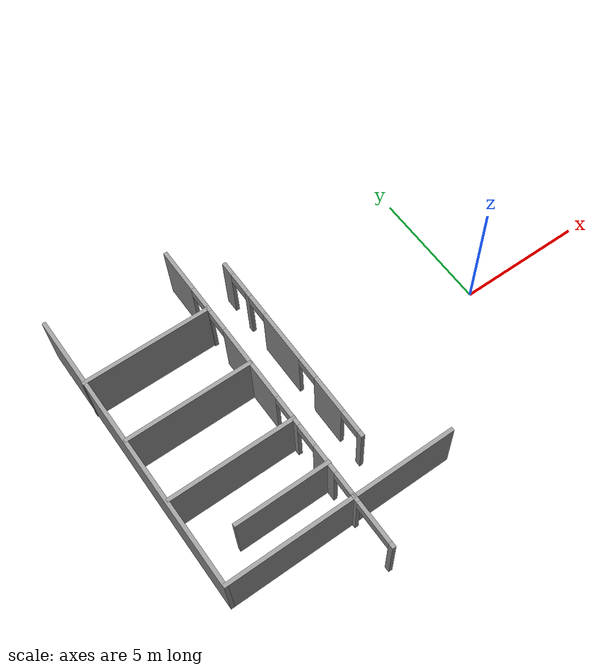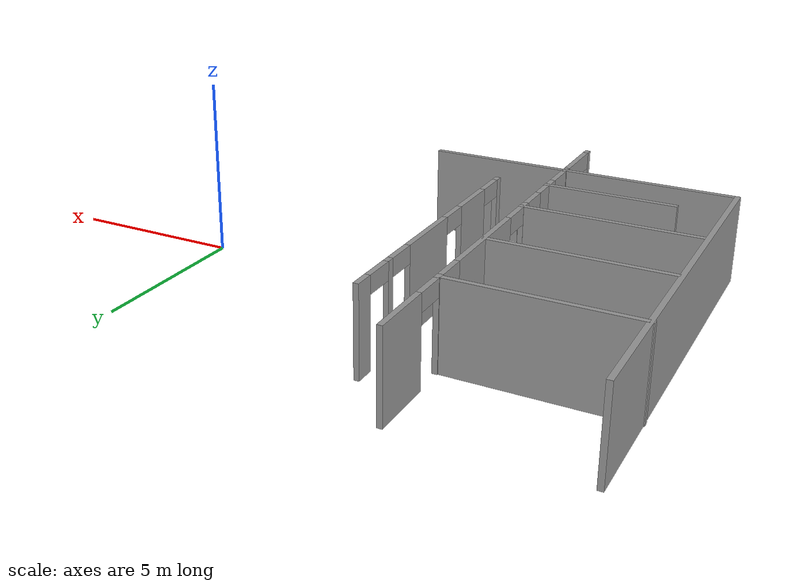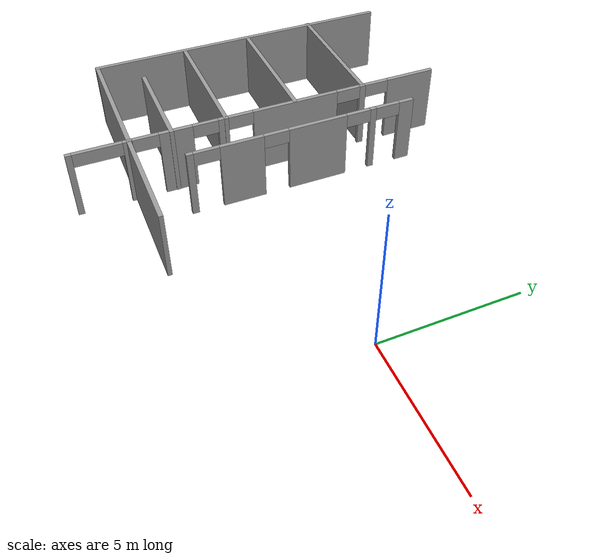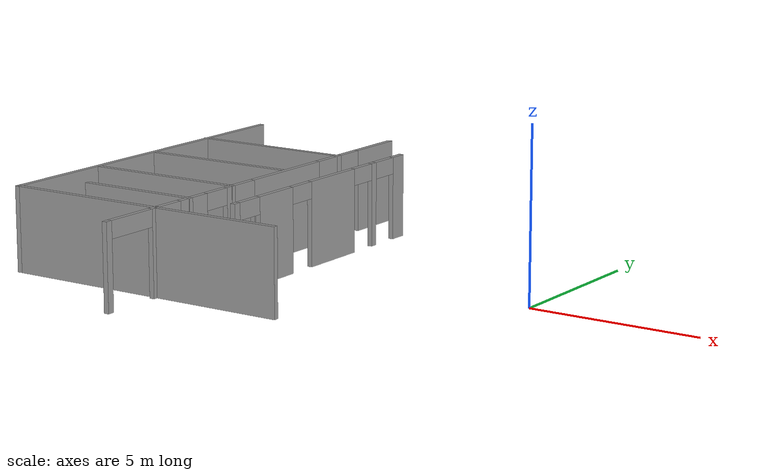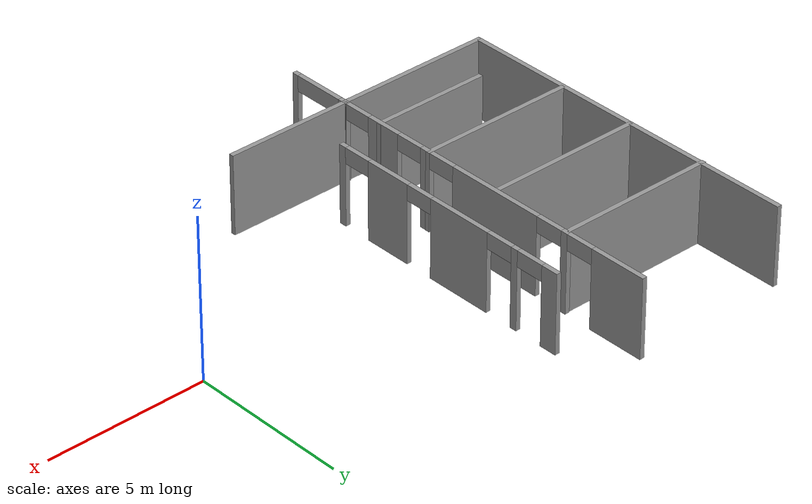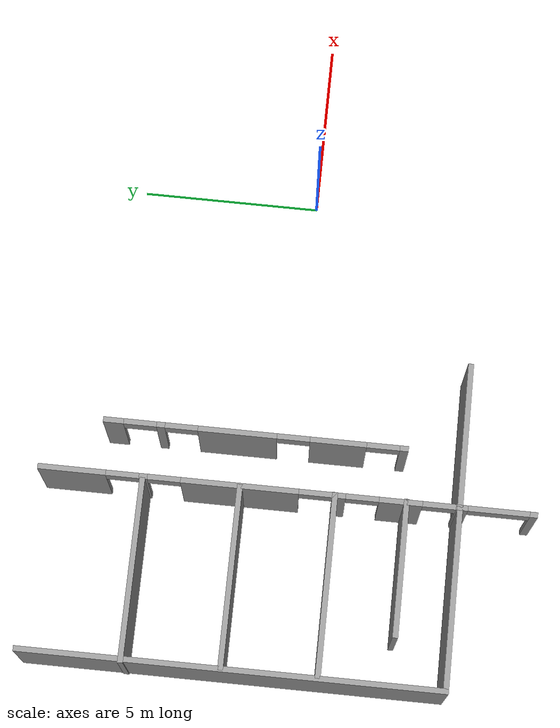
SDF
<sdf version="1.7">
 <model name="batimentH">
  <link name="Wall_1">
   <pose>-13.8701 1.00339 0 0 0 -1.56945</pose>
   <visual name="Wall_1_Visual">
    <pose>0 0 1.25 0 -0 0</pose>
    <geometry><box><size>11.5003 0.15 2.5</size></box></geometry>
    <material>
     <script><uri>file://media/materials/scripts/gazebo.material</uri><name>Gazebo/Grey</name></script>
     <ambient>1 1 1 1</ambient>
     <shader type="pixel"/>
    </material>
    <meta><layer>0</layer></meta>
   </visual>
   <collision name="Wall_1_Collision">
    <pose>0 0 1.25 0 -0 0</pose>
    <geometry><box><size>11.5003 0.15 2.5</size></box></geometry>
    <surface>
     <friction>
      <ode><mu>1</mu><mu2>1</mu2><fdir1>0 0 0</fdir1><slip1>0</slip1><slip2>0</slip2></ode>
      <torsional>
       <coefficient>1</coefficient>
       <patch_radius>0</patch_radius>
       <surface_radius>0</surface_radius>
       <use_patch_radius>1</use_patch_radius>
       <ode><slip>0</slip></ode>
      </torsional>
     </friction>
     <bounce><restitution_coefficient>0</restitution_coefficient><threshold>1e+06</threshold></bounce>
     <contact>
      <collide_without_contact>0</collide_without_contact>
      <collide_without_contact_bitmask>1</collide_without_contact_bitmask>
      <collide_bitmask>1</collide_bitmask>
      <ode>
       <soft_cfm>0</soft_cfm>
       <soft_erp>0.2</soft_erp>
       <kp>1e+13</kp>
       <kd>1</kd>
       <max_vel>0.01</max_vel>
       <min_depth>0</min_depth>
      </ode>
      <bullet>
       <split_impulse>1</split_impulse>
       <split_impulse_penetration_threshold>-0.01</split_impulse_penetration_threshold>
       <soft_cfm>0</soft_cfm>
       <soft_erp>0.2</soft_erp>
       <kp>1e+13</kp>
       <kd>1</kd>
      </bullet>
     </contact>
    </surface>
   </collision>
  </link>
  <link name="Wall_10">
   <pose>-11.4774 3.90885 0 0 -0 0</pose>
   <visual name="Wall_10_Visual">
    <pose>0 0 1.25 0 -0 0</pose>
    <geometry><box><size>5 0.15 2.5</size></box></geometry>
    <material>
     <script><uri>file://media/materials/scripts/gazebo.material</uri><name>Gazebo/Grey</name></script>
     <ambient>1 1 1 1</ambient>
     <shader type="pixel"/>
    </material>
    <meta><layer>0</layer></meta>
   </visual>
   <collision name="Wall_10_Collision">
    <pose>0 0 1.25 0 -0 0</pose>
    <geometry><box><size>5 0.15 2.5</size></box></geometry>
    <surface>
     <friction>
      <ode><mu>1</mu><mu2>1</mu2><fdir1>0 0 0</fdir1><slip1>0</slip1><slip2>0</slip2></ode>
      <torsional>
       <coefficient>1</coefficient>
       <patch_radius>0</patch_radius>
       <surface_radius>0</surface_radius>
       <use_patch_radius>1</use_patch_radius>
       <ode><slip>0</slip></ode>
      </torsional>
     </friction>
     <bounce><restitution_coefficient>0</restitution_coefficient><threshold>1e+06</threshold></bounce>
     <contact>
      <collide_without_contact>0</collide_without_contact>
      <collide_without_contact_bitmask>1</collide_without_contact_bitmask>
      <collide_bitmask>1</collide_bitmask>
      <ode>
       <soft_cfm>0</soft_cfm>
       <soft_erp>0.2</soft_erp>
       <kp>1e+13</kp>
       <kd>1</kd>
       <max_vel>0.01</max_vel>
       <min_depth>0</min_depth>
      </ode>
      <bullet>
       <split_impulse>1</split_impulse>
       <split_impulse_penetration_threshold>-0.01</split_impulse_penetration_threshold>
       <soft_cfm>0</soft_cfm>
       <soft_erp>0.2</soft_erp>
       <kp>1e+13</kp>
       <kd>1</kd>
      </bullet>
     </contact>
    </surface>
   </collision>
  </link>
  <link name="Wall_14">
   <pose>-7.47746 0.99768 0 0 0 -1.5708</pose>
   <visual name="Wall_14_Visual_0">
    <pose>-3.88396 0 1.25 0 -0 0</pose>
    <geometry><box><size>0.55862 0.15 2.5</size></box></geometry>
    <material>
     <script><uri>file://media/materials/scripts/gazebo.material</uri><name>Gazebo/Grey</name></script>
     <ambient>1 1 1 1</ambient>
     <shader type="pixel"/>
    </material>
    <meta><layer>0</layer></meta>
   </visual>
   <visual name="Wall_14_Visual_1">
    <pose>-2.59002 0 1.25 0 -0 0</pose>
    <geometry><box><size>0.22926 0.15 2.5</size></box></geometry>
    <material>
     <script><uri>file://media/materials/scripts/gazebo.material</uri><name>Gazebo/Grey</name></script>
     <ambient>1 1 1 1</ambient>
     <shader type="pixel"/>
    </material>
    <meta><layer>0</layer></meta>
   </visual>
   <visual name="Wall_14_Visual_2">
    <pose>-0.49809 0 1.25 0 -0 0</pose>
    <geometry><box><size>2.15459 0.15 2.5</size></box></geometry>
    <material>
     <script><uri>file://media/materials/scripts/gazebo.material</uri><name>Gazebo/Grey</name></script>
     <ambient>1 1 1 1</ambient>
     <shader type="pixel"/>
    </material>
    <meta><layer>0</layer></meta>
   </visual>
   <visual name="Wall_14_Visual_3">
    <pose>2.25155 0 1.25 0 -0 0</pose>
    <geometry><box><size>1.54468 0.15 2.5</size></box></geometry>
    <material>
     <script><uri>file://media/materials/scripts/gazebo.material</uri><name>Gazebo/Grey</name></script>
     <ambient>1 1 1 1</ambient>
     <shader type="pixel"/>
    </material>
    <meta><layer>0</layer></meta>
   </visual>
   <visual name="Wall_14_Visual_4">
    <pose>4.04358 0 1.25 0 -0 0</pose>
    <geometry><box><size>0.239381 0.15 2.5</size></box></geometry>
    <material>
     <script><uri>file://media/materials/scripts/gazebo.material</uri><name>Gazebo/Grey</name></script>
     <ambient>1 1 1 1</ambient>
     <shader type="pixel"/>
    </material>
    <meta><layer>0</layer></meta>
   </visual>
   <visual name="Wall_14_Visual_5">
    <pose>-3.15465 0 2.25 0 -0 0</pose>
    <geometry><box><size>0.9 0.15 0.5</size></box></geometry>
    <material>
     <script><uri>file://media/materials/scripts/gazebo.material</uri><name>Gazebo/Grey</name></script>
     <ambient>1 1 1 1</ambient>
     <shader type="pixel"/>
    </material>
    <meta><layer>0</layer></meta>
   </visual>
   <visual name="Wall_14_Visual_6">
    <pose>-2.02539 0 2.25 0 -0 0</pose>
    <geometry><box><size>0.9 0.15 0.5</size></box></geometry>
    <material>
     <script><uri>file://media/materials/scripts/gazebo.material</uri><name>Gazebo/Grey</name></script>
     <ambient>1 1 1 1</ambient>
     <shader type="pixel"/>
    </material>
    <meta><layer>0</layer></meta>
   </visual>
   <visual name="Wall_14_Visual_7">
    <pose>1.02921 0 2.25 0 -0 0</pose>
    <geometry><box><size>0.9 0.15 0.5</size></box></geometry>
    <material>
     <script><uri>file://media/materials/scripts/gazebo.material</uri><name>Gazebo/Grey</name></script>
     <ambient>1 1 1 1</ambient>
     <shader type="pixel"/>
    </material>
    <meta><layer>0</layer></meta>
   </visual>
   <visual name="Wall_14_Visual_8">
    <pose>3.47389 0 2.25 0 -0 0</pose>
    <geometry><box><size>0.9 0.15 0.5</size></box></geometry>
    <material>
     <script><uri>file://media/materials/scripts/gazebo.material</uri><name>Gazebo/Grey</name></script>
     <ambient>1 1 1 1</ambient>
     <shader type="pixel"/>
    </material>
    <meta><layer>0</layer></meta>
   </visual>
   <collision name="Wall_14_Collision_0">
    <pose>-3.88396 0 1.25 0 -0 0</pose>
    <geometry><box><size>0.55862 0.15 2.5</size></box></geometry>
    <surface>
     <friction>
      <ode><mu>1</mu><mu2>1</mu2><fdir1>0 0 0</fdir1><slip1>0</slip1><slip2>0</slip2></ode>
      <torsional>
       <coefficient>1</coefficient>
       <patch_radius>0</patch_radius>
       <surface_radius>0</surface_radius>
       <use_patch_radius>1</use_patch_radius>
       <ode><slip>0</slip></ode>
      </torsional>
     </friction>
     <bounce><restitution_coefficient>0</restitution_coefficient><threshold>1e+06</threshold></bounce>
     <contact>
      <collide_without_contact>0</collide_without_contact>
      <collide_without_contact_bitmask>1</collide_without_contact_bitmask>
      <collide_bitmask>1</collide_bitmask>
      <ode>
       <soft_cfm>0</soft_cfm>
       <soft_erp>0.2</soft_erp>
       <kp>1e+13</kp>
       <kd>1</kd>
       <max_vel>0.01</max_vel>
       <min_depth>0</min_depth>
      </ode>
      <bullet>
       <split_impulse>1</split_impulse>
       <split_impulse_penetration_threshold>-0.01</split_impulse_penetration_threshold>
       <soft_cfm>0</soft_cfm>
       <soft_erp>0.2</soft_erp>
       <kp>1e+13</kp>
       <kd>1</kd>
      </bullet>
     </contact>
    </surface>
   </collision>
   <collision name="Wall_14_Collision_1">
    <pose>-2.59002 0 1.25 0 -0 0</pose>
    <geometry><box><size>0.22926 0.15 2.5</size></box></geometry>
    <surface>
     <friction>
      <ode><mu>1</mu><mu2>1</mu2><fdir1>0 0 0</fdir1><slip1>0</slip1><slip2>0</slip2></ode>
      <torsional>
       <coefficient>1</coefficient>
       <patch_radius>0</patch_radius>
       <surface_radius>0</surface_radius>
       <use_patch_radius>1</use_patch_radius>
       <ode><slip>0</slip></ode>
      </torsional>
     </friction>
     <bounce><restitution_coefficient>0</restitution_coefficient><threshold>1e+06</threshold></bounce>
     <contact>
      <collide_without_contact>0</collide_without_contact>
      <collide_without_contact_bitmask>1</collide_without_contact_bitmask>
      <collide_bitmask>1</collide_bitmask>
      <ode>
       <soft_cfm>0</soft_cfm>
       <soft_erp>0.2</soft_erp>
       <kp>1e+13</kp>
       <kd>1</kd>
       <max_vel>0.01</max_vel>
       <min_depth>0</min_depth>
      </ode>
      <bullet>
       <split_impulse>1</split_impulse>
       <split_impulse_penetration_threshold>-0.01</split_impulse_penetration_threshold>
       <soft_cfm>0</soft_cfm>
       <soft_erp>0.2</soft_erp>
       <kp>1e+13</kp>
       <kd>1</kd>
      </bullet>
     </contact>
    </surface>
   </collision>
   <collision name="Wall_14_Collision_2">
    <pose>-0.49809 0 1.25 0 -0 0</pose>
    <geometry><box><size>2.15459 0.15 2.5</size></box></geometry>
    <surface>
     <friction>
      <ode><mu>1</mu><mu2>1</mu2><fdir1>0 0 0</fdir1><slip1>0</slip1><slip2>0</slip2></ode>
      <torsional>
       <coefficient>1</coefficient>
       <patch_radius>0</patch_radius>
       <surface_radius>0</surface_radius>
       <use_patch_radius>1</use_patch_radius>
       <ode><slip>0</slip></ode>
      </torsional>
     </friction>
     <bounce><restitution_coefficient>0</restitution_coefficient><threshold>1e+06</threshold></bounce>
     <contact>
      <collide_without_contact>0</collide_without_contact>
      <collide_without_contact_bitmask>1</collide_without_contact_bitmask>
      <collide_bitmask>1</collide_bitmask>
      <ode>
       <soft_cfm>0</soft_cfm>
       <soft_erp>0.2</soft_erp>
       <kp>1e+13</kp>
       <kd>1</kd>
       <max_vel>0.01</max_vel>
       <min_depth>0</min_depth>
      </ode>
      <bullet>
       <split_impulse>1</split_impulse>
       <split_impulse_penetration_threshold>-0.01</split_impulse_penetration_threshold>
       <soft_cfm>0</soft_cfm>
       <soft_erp>0.2</soft_erp>
       <kp>1e+13</kp>
       <kd>1</kd>
      </bullet>
     </contact>
    </surface>
   </collision>
   <collision name="Wall_14_Collision_3">
    <pose>2.25155 0 1.25 0 -0 0</pose>
    <geometry><box><size>1.54468 0.15 2.5</size></box></geometry>
    <surface>
     <friction>
      <ode><mu>1</mu><mu2>1</mu2><fdir1>0 0 0</fdir1><slip1>0</slip1><slip2>0</slip2></ode>
      <torsional>
       <coefficient>1</coefficient>
       <patch_radius>0</patch_radius>
       <surface_radius>0</surface_radius>
       <use_patch_radius>1</use_patch_radius>
       <ode><slip>0</slip></ode>
      </torsional>
     </friction>
     <bounce><restitution_coefficient>0</restitution_coefficient><threshold>1e+06</threshold></bounce>
     <contact>
      <collide_without_contact>0</collide_without_contact>
      <collide_without_contact_bitmask>1</collide_without_contact_bitmask>
      <collide_bitmask>1</collide_bitmask>
      <ode>
       <soft_cfm>0</soft_cfm>
       <soft_erp>0.2</soft_erp>
       <kp>1e+13</kp>
       <kd>1</kd>
       <max_vel>0.01</max_vel>
       <min_depth>0</min_depth>
      </ode>
      <bullet>
       <split_impulse>1</split_impulse>
       <split_impulse_penetration_threshold>-0.01</split_impulse_penetration_threshold>
       <soft_cfm>0</soft_cfm>
       <soft_erp>0.2</soft_erp>
       <kp>1e+13</kp>
       <kd>1</kd>
      </bullet>
     </contact>
    </surface>
   </collision>
   <collision name="Wall_14_Collision_4">
    <pose>4.04358 0 1.25 0 -0 0</pose>
    <geometry><box><size>0.239381 0.15 2.5</size></box></geometry>
    <surface>
     <friction>
      <ode><mu>1</mu><mu2>1</mu2><fdir1>0 0 0</fdir1><slip1>0</slip1><slip2>0</slip2></ode>
      <torsional>
       <coefficient>1</coefficient>
       <patch_radius>0</patch_radius>
       <surface_radius>0</surface_radius>
       <use_patch_radius>1</use_patch_radius>
       <ode><slip>0</slip></ode>
      </torsional>
     </friction>
     <bounce><restitution_coefficient>0</restitution_coefficient><threshold>1e+06</threshold></bounce>
     <contact>
      <collide_without_contact>0</collide_without_contact>
      <collide_without_contact_bitmask>1</collide_without_contact_bitmask>
      <collide_bitmask>1</collide_bitmask>
      <ode>
       <soft_cfm>0</soft_cfm>
       <soft_erp>0.2</soft_erp>
       <kp>1e+13</kp>
       <kd>1</kd>
       <max_vel>0.01</max_vel>
       <min_depth>0</min_depth>
      </ode>
      <bullet>
       <split_impulse>1</split_impulse>
       <split_impulse_penetration_threshold>-0.01</split_impulse_penetration_threshold>
       <soft_cfm>0</soft_cfm>
       <soft_erp>0.2</soft_erp>
       <kp>1e+13</kp>
       <kd>1</kd>
      </bullet>
     </contact>
    </surface>
   </collision>
   <collision name="Wall_14_Collision_5">
    <pose>-3.15465 0 2.25 0 -0 0</pose>
    <geometry><box><size>0.9 0.15 0.5</size></box></geometry>
    <surface>
     <friction>
      <ode><mu>1</mu><mu2>1</mu2><fdir1>0 0 0</fdir1><slip1>0</slip1><slip2>0</slip2></ode>
      <torsional>
       <coefficient>1</coefficient>
       <patch_radius>0</patch_radius>
       <surface_radius>0</surface_radius>
       <use_patch_radius>1</use_patch_radius>
       <ode><slip>0</slip></ode>
      </torsional>
     </friction>
     <bounce><restitution_coefficient>0</restitution_coefficient><threshold>1e+06</threshold></bounce>
     <contact>
      <collide_without_contact>0</collide_without_contact>
      <collide_without_contact_bitmask>1</collide_without_contact_bitmask>
      <collide_bitmask>1</collide_bitmask>
      <ode>
       <soft_cfm>0</soft_cfm>
       <soft_erp>0.2</soft_erp>
       <kp>1e+13</kp>
       <kd>1</kd>
       <max_vel>0.01</max_vel>
       <min_depth>0</min_depth>
      </ode>
      <bullet>
       <split_impulse>1</split_impulse>
       <split_impulse_penetration_threshold>-0.01</split_impulse_penetration_threshold>
       <soft_cfm>0</soft_cfm>
       <soft_erp>0.2</soft_erp>
       <kp>1e+13</kp>
       <kd>1</kd>
      </bullet>
     </contact>
    </surface>
   </collision>
   <collision name="Wall_14_Collision_6">
    <pose>-2.02539 0 2.25 0 -0 0</pose>
    <geometry><box><size>0.9 0.15 0.5</size></box></geometry>
    <surface>
     <friction>
      <ode><mu>1</mu><mu2>1</mu2><fdir1>0 0 0</fdir1><slip1>0</slip1><slip2>0</slip2></ode>
      <torsional>
       <coefficient>1</coefficient>
       <patch_radius>0</patch_radius>
       <surface_radius>0</surface_radius>
       <use_patch_radius>1</use_patch_radius>
       <ode><slip>0</slip></ode>
      </torsional>
     </friction>
     <bounce><restitution_coefficient>0</restitution_coefficient><threshold>1e+06</threshold></bounce>
     <contact>
      <collide_without_contact>0</collide_without_contact>
      <collide_without_contact_bitmask>1</collide_without_contact_bitmask>
      <collide_bitmask>1</collide_bitmask>
      <ode>
       <soft_cfm>0</soft_cfm>
       <soft_erp>0.2</soft_erp>
       <kp>1e+13</kp>
       <kd>1</kd>
       <max_vel>0.01</max_vel>
       <min_depth>0</min_depth>
      </ode>
      <bullet>
       <split_impulse>1</split_impulse>
       <split_impulse_penetration_threshold>-0.01</split_impulse_penetration_threshold>
       <soft_cfm>0</soft_cfm>
       <soft_erp>0.2</soft_erp>
       <kp>1e+13</kp>
       <kd>1</kd>
      </bullet>
     </contact>
    </surface>
   </collision>
   <collision name="Wall_14_Collision_7">
    <pose>1.02921 0 2.25 0 -0 0</pose>
    <geometry><box><size>0.9 0.15 0.5</size></box></geometry>
    <surface>
     <friction>
      <ode><mu>1</mu><mu2>1</mu2><fdir1>0 0 0</fdir1><slip1>0</slip1><slip2>0</slip2></ode>
      <torsional>
       <coefficient>1</coefficient>
       <patch_radius>0</patch_radius>
       <surface_radius>0</surface_radius>
       <use_patch_radius>1</use_patch_radius>
       <ode><slip>0</slip></ode>
      </torsional>
     </friction>
     <bounce><restitution_coefficient>0</restitution_coefficient><threshold>1e+06</threshold></bounce>
     <contact>
      <collide_without_contact>0</collide_without_contact>
      <collide_without_contact_bitmask>1</collide_without_contact_bitmask>
      <collide_bitmask>1</collide_bitmask>
      <ode>
       <soft_cfm>0</soft_cfm>
       <soft_erp>0.2</soft_erp>
       <kp>1e+13</kp>
       <kd>1</kd>
       <max_vel>0.01</max_vel>
       <min_depth>0</min_depth>
      </ode>
      <bullet>
       <split_impulse>1</split_impulse>
       <split_impulse_penetration_threshold>-0.01</split_impulse_penetration_threshold>
       <soft_cfm>0</soft_cfm>
       <soft_erp>0.2</soft_erp>
       <kp>1e+13</kp>
       <kd>1</kd>
      </bullet>
     </contact>
    </surface>
   </collision>
   <collision name="Wall_14_Collision_8">
    <pose>3.47389 0 2.25 0 -0 0</pose>
    <geometry><box><size>0.9 0.15 0.5</size></box></geometry>
    <surface>
     <friction>
      <ode><mu>1</mu><mu2>1</mu2><fdir1>0 0 0</fdir1><slip1>0</slip1><slip2>0</slip2></ode>
      <torsional>
       <coefficient>1</coefficient>
       <patch_radius>0</patch_radius>
       <surface_radius>0</surface_radius>
       <use_patch_radius>1</use_patch_radius>
       <ode><slip>0</slip></ode>
      </torsional>
     </friction>
     <bounce><restitution_coefficient>0</restitution_coefficient><threshold>1e+06</threshold></bounce>
     <contact>
      <collide_without_contact>0</collide_without_contact>
      <collide_without_contact_bitmask>1</collide_without_contact_bitmask>
      <collide_bitmask>1</collide_bitmask>
      <ode>
       <soft_cfm>0</soft_cfm>
       <soft_erp>0.2</soft_erp>
       <kp>1e+13</kp>
       <kd>1</kd>
       <max_vel>0.01</max_vel>
       <min_depth>0</min_depth>
      </ode>
      <bullet>
       <split_impulse>1</split_impulse>
       <split_impulse_penetration_threshold>-0.01</split_impulse_penetration_threshold>
       <soft_cfm>0</soft_cfm>
       <soft_erp>0.2</soft_erp>
       <kp>1e+13</kp>
       <kd>1</kd>
      </bullet>
     </contact>
    </surface>
   </collision>
  </link>
  <link name="Wall_2">
   <pose>-9.42218 -4.67161 0 0 -0 0</pose>
   <visual name="Wall_2_Visual">
    <pose>0 0 1.25 0 -0 0</pose>
    <geometry><box><size>9 0.15 2.5</size></box></geometry>
    <material>
     <script><uri>file://media/materials/scripts/gazebo.material</uri><name>Gazebo/Grey</name></script>
     <ambient>1 1 1 1</ambient>
     <shader type="pixel"/>
    </material>
    <meta><layer>0</layer></meta>
   </visual>
   <collision name="Wall_2_Collision">
    <pose>0 0 1.25 0 -0 0</pose>
    <geometry><box><size>9 0.15 2.5</size></box></geometry>
    <surface>
     <friction>
      <ode><mu>1</mu><mu2>1</mu2><fdir1>0 0 0</fdir1><slip1>0</slip1><slip2>0</slip2></ode>
      <torsional>
       <coefficient>1</coefficient>
       <patch_radius>0</patch_radius>
       <surface_radius>0</surface_radius>
       <use_patch_radius>1</use_patch_radius>
       <ode><slip>0</slip></ode>
      </torsional>
     </friction>
     <bounce><restitution_coefficient>0</restitution_coefficient><threshold>1e+06</threshold></bounce>
     <contact>
      <collide_without_contact>0</collide_without_contact>
      <collide_without_contact_bitmask>1</collide_without_contact_bitmask>
      <collide_bitmask>1</collide_bitmask>
      <ode>
       <soft_cfm>0</soft_cfm>
       <soft_erp>0.2</soft_erp>
       <kp>1e+13</kp>
       <kd>1</kd>
       <max_vel>0.01</max_vel>
       <min_depth>0</min_depth>
      </ode>
      <bullet>
       <split_impulse>1</split_impulse>
       <split_impulse_penetration_threshold>-0.01</split_impulse_penetration_threshold>
       <soft_cfm>0</soft_cfm>
       <soft_erp>0.2</soft_erp>
       <kp>1e+13</kp>
       <kd>1</kd>
      </bullet>
     </contact>
    </surface>
   </collision>
  </link>
  <link name="Wall_26">
   <pose>-11.3608 -1.29937 0 0 -0 3.14159</pose>
   <visual name="Wall_26_Visual">
    <pose>0 0 1.25 0 -0 0</pose>
    <geometry><box><size>5 0.15 2.5</size></box></geometry>
    <material>
     <script><uri>file://media/materials/scripts/gazebo.material</uri><name>Gazebo/Grey</name></script>
     <ambient>1 1 1 1</ambient>
     <shader type="pixel"/>
    </material>
    <meta><layer>0</layer></meta>
   </visual>
   <collision name="Wall_26_Collision">
    <pose>0 0 1.25 0 -0 0</pose>
    <geometry><box><size>5 0.15 2.5</size></box></geometry>
    <surface>
     <friction>
      <ode><mu>1</mu><mu2>1</mu2><fdir1>0 0 0</fdir1><slip1>0</slip1><slip2>0</slip2></ode>
      <torsional>
       <coefficient>1</coefficient>
       <patch_radius>0</patch_radius>
       <surface_radius>0</surface_radius>
       <use_patch_radius>1</use_patch_radius>
       <ode><slip>0</slip></ode>
      </torsional>
     </friction>
     <bounce><restitution_coefficient>0</restitution_coefficient><threshold>1e+06</threshold></bounce>
     <contact>
      <collide_without_contact>0</collide_without_contact>
      <collide_without_contact_bitmask>1</collide_without_contact_bitmask>
      <collide_bitmask>1</collide_bitmask>
      <ode>
       <soft_cfm>0</soft_cfm>
       <soft_erp>0.2</soft_erp>
       <kp>1e+13</kp>
       <kd>1</kd>
       <max_vel>0.01</max_vel>
       <min_depth>0</min_depth>
      </ode>
      <bullet>
       <split_impulse>1</split_impulse>
       <split_impulse_penetration_threshold>-0.01</split_impulse_penetration_threshold>
       <soft_cfm>0</soft_cfm>
       <soft_erp>0.2</soft_erp>
       <kp>1e+13</kp>
       <kd>1</kd>
      </bullet>
     </contact>
    </surface>
   </collision>
  </link>
  <link name="Wall_28">
   <pose>-10.7271 -3.23202 0 0 -0 3.14159</pose>
   <visual name="Wall_28_Visual">
    <pose>0 0 1.25 0 -0 0</pose>
    <geometry><box><size>3.75 0.15 2.5</size></box></geometry>
    <material>
     <script><uri>file://media/materials/scripts/gazebo.material</uri><name>Gazebo/Grey</name></script>
     <ambient>1 1 1 1</ambient>
     <shader type="pixel"/>
    </material>
    <meta><layer>0</layer></meta>
   </visual>
   <collision name="Wall_28_Collision">
    <pose>0 0 1.25 0 -0 0</pose>
    <geometry><box><size>3.75 0.15 2.5</size></box></geometry>
    <surface>
     <friction>
      <ode><mu>1</mu><mu2>1</mu2><fdir1>0 0 0</fdir1><slip1>0</slip1><slip2>0</slip2></ode>
      <torsional>
       <coefficient>1</coefficient>
       <patch_radius>0</patch_radius>
       <surface_radius>0</surface_radius>
       <use_patch_radius>1</use_patch_radius>
       <ode><slip>0</slip></ode>
      </torsional>
     </friction>
     <bounce><restitution_coefficient>0</restitution_coefficient><threshold>1e+06</threshold></bounce>
     <contact>
      <collide_without_contact>0</collide_without_contact>
      <collide_without_contact_bitmask>1</collide_without_contact_bitmask>
      <collide_bitmask>1</collide_bitmask>
      <ode>
       <soft_cfm>0</soft_cfm>
       <soft_erp>0.2</soft_erp>
       <kp>1e+13</kp>
       <kd>1</kd>
       <max_vel>0.01</max_vel>
       <min_depth>0</min_depth>
      </ode>
      <bullet>
       <split_impulse>1</split_impulse>
       <split_impulse_penetration_threshold>-0.01</split_impulse_penetration_threshold>
       <soft_cfm>0</soft_cfm>
       <soft_erp>0.2</soft_erp>
       <kp>1e+13</kp>
       <kd>1</kd>
      </bullet>
     </contact>
    </surface>
   </collision>
  </link>
  <link name="Wall_48">
   <pose>-8.94417 -5.67498 0 0 0 -1.5708</pose>
   <visual name="Wall_48_Visual_0">
    <pose>-0.940335 0 1.25 0 -0 0</pose>
    <geometry><box><size>0.295144 0.15 2.5</size></box></geometry>
    <material>
     <script><uri>file://media/materials/scripts/gazebo.material</uri><name>Gazebo/Grey</name></script>
     <ambient>1 1 1 1</ambient>
     <shader type="pixel"/>
    </material>
    <meta><layer>0</layer></meta>
   </visual>
   <visual name="Wall_48_Visual_1">
    <pose>0.981555 0 1.25 0 -0 0</pose>
    <geometry><box><size>0.212704 0.15 2.5</size></box></geometry>
    <material>
     <script><uri>file://media/materials/scripts/gazebo.material</uri><name>Gazebo/Grey</name></script>
     <ambient>1 1 1 1</ambient>
     <shader type="pixel"/>
    </material>
    <meta><layer>0</layer></meta>
   </visual>
   <visual name="Wall_48_Visual_2">
    <pose>0.04122 0 2.25 0 -0 0</pose>
    <geometry><box><size>1.66797 0.15 0.5</size></box></geometry>
    <material>
     <script><uri>file://media/materials/scripts/gazebo.material</uri><name>Gazebo/Grey</name></script>
     <ambient>1 1 1 1</ambient>
     <shader type="pixel"/>
    </material>
    <meta><layer>0</layer></meta>
   </visual>
   <collision name="Wall_48_Collision_0">
    <pose>-0.940335 0 1.25 0 -0 0</pose>
    <geometry><box><size>0.295144 0.15 2.5</size></box></geometry>
    <surface>
     <friction>
      <ode><mu>1</mu><mu2>1</mu2><fdir1>0 0 0</fdir1><slip1>0</slip1><slip2>0</slip2></ode>
      <torsional>
       <coefficient>1</coefficient>
       <patch_radius>0</patch_radius>
       <surface_radius>0</surface_radius>
       <use_patch_radius>1</use_patch_radius>
       <ode><slip>0</slip></ode>
      </torsional>
     </friction>
     <bounce><restitution_coefficient>0</restitution_coefficient><threshold>1e+06</threshold></bounce>
     <contact>
      <collide_without_contact>0</collide_without_contact>
      <collide_without_contact_bitmask>1</collide_without_contact_bitmask>
      <collide_bitmask>1</collide_bitmask>
      <ode>
       <soft_cfm>0</soft_cfm>
       <soft_erp>0.2</soft_erp>
       <kp>1e+13</kp>
       <kd>1</kd>
       <max_vel>0.01</max_vel>
       <min_depth>0</min_depth>
      </ode>
      <bullet>
       <split_impulse>1</split_impulse>
       <split_impulse_penetration_threshold>-0.01</split_impulse_penetration_threshold>
       <soft_cfm>0</soft_cfm>
       <soft_erp>0.2</soft_erp>
       <kp>1e+13</kp>
       <kd>1</kd>
      </bullet>
     </contact>
    </surface>
   </collision>
   <collision name="Wall_48_Collision_1">
    <pose>0.981555 0 1.25 0 -0 0</pose>
    <geometry><box><size>0.212704 0.15 2.5</size></box></geometry>
    <surface>
     <friction>
      <ode><mu>1</mu><mu2>1</mu2><fdir1>0 0 0</fdir1><slip1>0</slip1><slip2>0</slip2></ode>
      <torsional>
       <coefficient>1</coefficient>
       <patch_radius>0</patch_radius>
       <surface_radius>0</surface_radius>
       <use_patch_radius>1</use_patch_radius>
       <ode><slip>0</slip></ode>
      </torsional>
     </friction>
     <bounce><restitution_coefficient>0</restitution_coefficient><threshold>1e+06</threshold></bounce>
     <contact>
      <collide_without_contact>0</collide_without_contact>
      <collide_without_contact_bitmask>1</collide_without_contact_bitmask>
      <collide_bitmask>1</collide_bitmask>
      <ode>
       <soft_cfm>0</soft_cfm>
       <soft_erp>0.2</soft_erp>
       <kp>1e+13</kp>
       <kd>1</kd>
       <max_vel>0.01</max_vel>
       <min_depth>0</min_depth>
      </ode>
      <bullet>
       <split_impulse>1</split_impulse>
       <split_impulse_penetration_threshold>-0.01</split_impulse_penetration_threshold>
       <soft_cfm>0</soft_cfm>
       <soft_erp>0.2</soft_erp>
       <kp>1e+13</kp>
       <kd>1</kd>
      </bullet>
     </contact>
    </surface>
   </collision>
   <collision name="Wall_48_Collision_2">
    <pose>0.04122 0 2.25 0 -0 0</pose>
    <geometry><box><size>1.66797 0.15 0.5</size></box></geometry>
    <surface>
     <friction>
      <ode><mu>1</mu><mu2>1</mu2><fdir1>0 0 0</fdir1><slip1>0</slip1><slip2>0</slip2></ode>
      <torsional>
       <coefficient>1</coefficient>
       <patch_radius>0</patch_radius>
       <surface_radius>0</surface_radius>
       <use_patch_radius>1</use_patch_radius>
       <ode><slip>0</slip></ode>
      </torsional>
     </friction>
     <bounce><restitution_coefficient>0</restitution_coefficient><threshold>1e+06</threshold></bounce>
     <contact>
      <collide_without_contact>0</collide_without_contact>
      <collide_without_contact_bitmask>1</collide_without_contact_bitmask>
      <collide_bitmask>1</collide_bitmask>
      <ode>
       <soft_cfm>0</soft_cfm>
       <soft_erp>0.2</soft_erp>
       <kp>1e+13</kp>
       <kd>1</kd>
       <max_vel>0.01</max_vel>
       <min_depth>0</min_depth>
      </ode>
      <bullet>
       <split_impulse>1</split_impulse>
       <split_impulse_penetration_threshold>-0.01</split_impulse_penetration_threshold>
       <soft_cfm>0</soft_cfm>
       <soft_erp>0.2</soft_erp>
       <kp>1e+13</kp>
       <kd>1</kd>
      </bullet>
     </contact>
    </surface>
   </collision>
  </link>
  <link name="Wall_6">
   <pose>-8.94417 1.01293 0 0 0 -1.5708</pose>
   <visual name="Wall_6_Visual_0">
    <pose>-4.82439 0 1.25 0 -0 0</pose>
    <geometry><box><size>1.85121 0.15 2.5</size></box></geometry>
    <material>
     <script><uri>file://media/materials/scripts/gazebo.material</uri><name>Gazebo/Grey</name></script>
     <ambient>1 1 1 1</ambient>
     <shader type="pixel"/>
    </material>
    <meta><layer>0</layer></meta>
   </visual>
   <visual name="Wall_6_Visual_1">
    <pose>-2.88416 0 1.25 0 -0 0</pose>
    <geometry><box><size>0.22926 0.15 2.5</size></box></geometry>
    <material>
     <script><uri>file://media/materials/scripts/gazebo.material</uri><name>Gazebo/Grey</name></script>
     <ambient>1 1 1 1</ambient>
     <shader type="pixel"/>
    </material>
    <meta><layer>0</layer></meta>
   </visual>
   <visual name="Wall_6_Visual_2">
    <pose>-0.267549 0 1.25 0 -0 0</pose>
    <geometry><box><size>3.20396 0.15 2.5</size></box></geometry>
    <material>
     <script><uri>file://media/materials/scripts/gazebo.material</uri><name>Gazebo/Grey</name></script>
     <ambient>1 1 1 1</ambient>
     <shader type="pixel"/>
    </material>
    <meta><layer>0</layer></meta>
   </visual>
   <visual name="Wall_6_Visual_3">
    <pose>2.41832 0 1.25 0 -0 0</pose>
    <geometry><box><size>0.367777 0.15 2.5</size></box></geometry>
    <material>
     <script><uri>file://media/materials/scripts/gazebo.material</uri><name>Gazebo/Grey</name></script>
     <ambient>1 1 1 1</ambient>
     <shader type="pixel"/>
    </material>
    <meta><layer>0</layer></meta>
   </visual>
   <visual name="Wall_6_Visual_4">
    <pose>4.08828 0 1.25 0 -0 0</pose>
    <geometry><box><size>1.17214 0.15 2.5</size></box></geometry>
    <material>
     <script><uri>file://media/materials/scripts/gazebo.material</uri><name>Gazebo/Grey</name></script>
     <ambient>1 1 1 1</ambient>
     <shader type="pixel"/>
    </material>
    <meta><layer>0</layer></meta>
   </visual>
   <visual name="Wall_6_Visual_5">
    <pose>5.66217 0 1.25 0 -0 0</pose>
    <geometry><box><size>0.175651 0.15 2.5</size></box></geometry>
    <material>
     <script><uri>file://media/materials/scripts/gazebo.material</uri><name>Gazebo/Grey</name></script>
     <ambient>1 1 1 1</ambient>
     <shader type="pixel"/>
    </material>
    <meta><layer>0</layer></meta>
   </visual>
   <visual name="Wall_6_Visual_6">
    <pose>-3.44879 0 2.25 0 -0 0</pose>
    <geometry><box><size>0.9 0.15 0.5</size></box></geometry>
    <material>
     <script><uri>file://media/materials/scripts/gazebo.material</uri><name>Gazebo/Grey</name></script>
     <ambient>1 1 1 1</ambient>
     <shader type="pixel"/>
    </material>
    <meta><layer>0</layer></meta>
   </visual>
   <visual name="Wall_6_Visual_7">
    <pose>-2.31953 0 2.25 0 -0 0</pose>
    <geometry><box><size>0.9 0.15 0.5</size></box></geometry>
    <material>
     <script><uri>file://media/materials/scripts/gazebo.material</uri><name>Gazebo/Grey</name></script>
     <ambient>1 1 1 1</ambient>
     <shader type="pixel"/>
    </material>
    <meta><layer>0</layer></meta>
   </visual>
   <visual name="Wall_6_Visual_8">
    <pose>1.78443 0 2.25 0 -0 0</pose>
    <geometry><box><size>0.9 0.15 0.5</size></box></geometry>
    <material>
     <script><uri>file://media/materials/scripts/gazebo.material</uri><name>Gazebo/Grey</name></script>
     <ambient>1 1 1 1</ambient>
     <shader type="pixel"/>
    </material>
    <meta><layer>0</layer></meta>
   </visual>
   <visual name="Wall_6_Visual_9">
    <pose>3.05221 0 2.25 0 -0 0</pose>
    <geometry><box><size>0.9 0.15 0.5</size></box></geometry>
    <material>
     <script><uri>file://media/materials/scripts/gazebo.material</uri><name>Gazebo/Grey</name></script>
     <ambient>1 1 1 1</ambient>
     <shader type="pixel"/>
    </material>
    <meta><layer>0</layer></meta>
   </visual>
   <visual name="Wall_6_Visual_10">
    <pose>5.12435 0 2.25 0 -0 0</pose>
    <geometry><box><size>0.9 0.15 0.5</size></box></geometry>
    <material>
     <script><uri>file://media/materials/scripts/gazebo.material</uri><name>Gazebo/Grey</name></script>
     <ambient>1 1 1 1</ambient>
     <shader type="pixel"/>
    </material>
    <meta><layer>0</layer></meta>
   </visual>
   <collision name="Wall_6_Collision_0">
    <pose>-4.82439 0 1.25 0 -0 0</pose>
    <geometry><box><size>1.85121 0.15 2.5</size></box></geometry>
    <surface>
     <friction>
      <ode><mu>1</mu><mu2>1</mu2><fdir1>0 0 0</fdir1><slip1>0</slip1><slip2>0</slip2></ode>
      <torsional>
       <coefficient>1</coefficient>
       <patch_radius>0</patch_radius>
       <surface_radius>0</surface_radius>
       <use_patch_radius>1</use_patch_radius>
       <ode><slip>0</slip></ode>
      </torsional>
     </friction>
     <bounce><restitution_coefficient>0</restitution_coefficient><threshold>1e+06</threshold></bounce>
     <contact>
      <collide_without_contact>0</collide_without_contact>
      <collide_without_contact_bitmask>1</collide_without_contact_bitmask>
      <collide_bitmask>1</collide_bitmask>
      <ode>
       <soft_cfm>0</soft_cfm>
       <soft_erp>0.2</soft_erp>
       <kp>1e+13</kp>
       <kd>1</kd>
       <max_vel>0.01</max_vel>
       <min_depth>0</min_depth>
      </ode>
      <bullet>
       <split_impulse>1</split_impulse>
       <split_impulse_penetration_threshold>-0.01</split_impulse_penetration_threshold>
       <soft_cfm>0</soft_cfm>
       <soft_erp>0.2</soft_erp>
       <kp>1e+13</kp>
       <kd>1</kd>
      </bullet>
     </contact>
    </surface>
   </collision>
   <collision name="Wall_6_Collision_2">
    <pose>-0.267549 0 1.25 0 -0 0</pose>
    <geometry><box><size>3.20396 0.15 2.5</size></box></geometry>
    <surface>
     <friction>
      <ode><mu>1</mu><mu2>1</mu2><fdir1>0 0 0</fdir1><slip1>0</slip1><slip2>0</slip2></ode>
      <torsional>
       <coefficient>1</coefficient>
       <patch_radius>0</patch_radius>
       <surface_radius>0</surface_radius>
       <use_patch_radius>1</use_patch_radius>
       <ode><slip>0</slip></ode>
      </torsional>
     </friction>
     <bounce><restitution_coefficient>0</restitution_coefficient><threshold>1e+06</threshold></bounce>
     <contact>
      <collide_without_contact>0</collide_without_contact>
      <collide_without_contact_bitmask>1</collide_without_contact_bitmask>
      <collide_bitmask>1</collide_bitmask>
      <ode>
       <soft_cfm>0</soft_cfm>
       <soft_erp>0.2</soft_erp>
       <kp>1e+13</kp>
       <kd>1</kd>
       <max_vel>0.01</max_vel>
       <min_depth>0</min_depth>
      </ode>
      <bullet>
       <split_impulse>1</split_impulse>
       <split_impulse_penetration_threshold>-0.01</split_impulse_penetration_threshold>
       <soft_cfm>0</soft_cfm>
       <soft_erp>0.2</soft_erp>
       <kp>1e+13</kp>
       <kd>1</kd>
      </bullet>
     </contact>
    </surface>
   </collision>
   <collision name="Wall_6_Collision_1">
    <pose>-2.88416 0 1.25 0 -0 0</pose>
    <geometry><box><size>0.22926 0.15 2.5</size></box></geometry>
    <surface>
     <friction>
      <ode><mu>1</mu><mu2>1</mu2><fdir1>0 0 0</fdir1><slip1>0</slip1><slip2>0</slip2></ode>
      <torsional>
       <coefficient>1</coefficient>
       <patch_radius>0</patch_radius>
       <surface_radius>0</surface_radius>
       <use_patch_radius>1</use_patch_radius>
       <ode><slip>0</slip></ode>
      </torsional>
     </friction>
     <bounce><restitution_coefficient>0</restitution_coefficient><threshold>1e+06</threshold></bounce>
     <contact>
      <collide_without_contact>0</collide_without_contact>
      <collide_without_contact_bitmask>1</collide_without_contact_bitmask>
      <collide_bitmask>1</collide_bitmask>
      <ode>
       <soft_cfm>0</soft_cfm>
       <soft_erp>0.2</soft_erp>
       <kp>1e+13</kp>
       <kd>1</kd>
       <max_vel>0.01</max_vel>
       <min_depth>0</min_depth>
      </ode>
      <bullet>
       <split_impulse>1</split_impulse>
       <split_impulse_penetration_threshold>-0.01</split_impulse_penetration_threshold>
       <soft_cfm>0</soft_cfm>
       <soft_erp>0.2</soft_erp>
       <kp>1e+13</kp>
       <kd>1</kd>
      </bullet>
     </contact>
    </surface>
   </collision>
   <collision name="Wall_6_Collision_3">
    <pose>2.41832 0 1.25 0 -0 0</pose>
    <geometry><box><size>0.367777 0.15 2.5</size></box></geometry>
    <surface>
     <friction>
      <ode><mu>1</mu><mu2>1</mu2><fdir1>0 0 0</fdir1><slip1>0</slip1><slip2>0</slip2></ode>
      <torsional>
       <coefficient>1</coefficient>
       <patch_radius>0</patch_radius>
       <surface_radius>0</surface_radius>
       <use_patch_radius>1</use_patch_radius>
       <ode><slip>0</slip></ode>
      </torsional>
     </friction>
     <bounce><restitution_coefficient>0</restitution_coefficient><threshold>1e+06</threshold></bounce>
     <contact>
      <collide_without_contact>0</collide_without_contact>
      <collide_without_contact_bitmask>1</collide_without_contact_bitmask>
      <collide_bitmask>1</collide_bitmask>
      <ode>
       <soft_cfm>0</soft_cfm>
       <soft_erp>0.2</soft_erp>
       <kp>1e+13</kp>
       <kd>1</kd>
       <max_vel>0.01</max_vel>
       <min_depth>0</min_depth>
      </ode>
      <bullet>
       <split_impulse>1</split_impulse>
       <split_impulse_penetration_threshold>-0.01</split_impulse_penetration_threshold>
       <soft_cfm>0</soft_cfm>
       <soft_erp>0.2</soft_erp>
       <kp>1e+13</kp>
       <kd>1</kd>
      </bullet>
     </contact>
    </surface>
   </collision>
   <collision name="Wall_6_Collision_4">
    <pose>4.08828 0 1.25 0 -0 0</pose>
    <geometry><box><size>1.17214 0.15 2.5</size></box></geometry>
    <surface>
     <friction>
      <ode><mu>1</mu><mu2>1</mu2><fdir1>0 0 0</fdir1><slip1>0</slip1><slip2>0</slip2></ode>
      <torsional>
       <coefficient>1</coefficient>
       <patch_radius>0</patch_radius>
       <surface_radius>0</surface_radius>
       <use_patch_radius>1</use_patch_radius>
       <ode><slip>0</slip></ode>
      </torsional>
     </friction>
     <bounce><restitution_coefficient>0</restitution_coefficient><threshold>1e+06</threshold></bounce>
     <contact>
      <collide_without_contact>0</collide_without_contact>
      <collide_without_contact_bitmask>1</collide_without_contact_bitmask>
      <collide_bitmask>1</collide_bitmask>
      <ode>
       <soft_cfm>0</soft_cfm>
       <soft_erp>0.2</soft_erp>
       <kp>1e+13</kp>
       <kd>1</kd>
       <max_vel>0.01</max_vel>
       <min_depth>0</min_depth>
      </ode>
      <bullet>
       <split_impulse>1</split_impulse>
       <split_impulse_penetration_threshold>-0.01</split_impulse_penetration_threshold>
       <soft_cfm>0</soft_cfm>
       <soft_erp>0.2</soft_erp>
       <kp>1e+13</kp>
       <kd>1</kd>
      </bullet>
     </contact>
    </surface>
   </collision>
   <collision name="Wall_6_Collision_5">
    <pose>5.66217 0 1.25 0 -0 0</pose>
    <geometry><box><size>0.175651 0.15 2.5</size></box></geometry>
    <surface>
     <friction>
      <ode><mu>1</mu><mu2>1</mu2><fdir1>0 0 0</fdir1><slip1>0</slip1><slip2>0</slip2></ode>
      <torsional>
       <coefficient>1</coefficient>
       <patch_radius>0</patch_radius>
       <surface_radius>0</surface_radius>
       <use_patch_radius>1</use_patch_radius>
       <ode><slip>0</slip></ode>
      </torsional>
     </friction>
     <bounce><restitution_coefficient>0</restitution_coefficient><threshold>1e+06</threshold></bounce>
     <contact>
      <collide_without_contact>0</collide_without_contact>
      <collide_without_contact_bitmask>1</collide_without_contact_bitmask>
      <collide_bitmask>1</collide_bitmask>
      <ode>
       <soft_cfm>0</soft_cfm>
       <soft_erp>0.2</soft_erp>
       <kp>1e+13</kp>
       <kd>1</kd>
       <max_vel>0.01</max_vel>
       <min_depth>0</min_depth>
      </ode>
      <bullet>
       <split_impulse>1</split_impulse>
       <split_impulse_penetration_threshold>-0.01</split_impulse_penetration_threshold>
       <soft_cfm>0</soft_cfm>
       <soft_erp>0.2</soft_erp>
       <kp>1e+13</kp>
       <kd>1</kd>
      </bullet>
     </contact>
    </surface>
   </collision>
   <collision name="Wall_6_Collision_6">
    <pose>-3.44879 0 2.25 0 -0 0</pose>
    <geometry><box><size>0.9 0.15 0.5</size></box></geometry>
    <surface>
     <friction>
      <ode><mu>1</mu><mu2>1</mu2><fdir1>0 0 0</fdir1><slip1>0</slip1><slip2>0</slip2></ode>
      <torsional>
       <coefficient>1</coefficient>
       <patch_radius>0</patch_radius>
       <surface_radius>0</surface_radius>
       <use_patch_radius>1</use_patch_radius>
       <ode><slip>0</slip></ode>
      </torsional>
     </friction>
     <bounce><restitution_coefficient>0</restitution_coefficient><threshold>1e+06</threshold></bounce>
     <contact>
      <collide_without_contact>0</collide_without_contact>
      <collide_without_contact_bitmask>1</collide_without_contact_bitmask>
      <collide_bitmask>1</collide_bitmask>
      <ode>
       <soft_cfm>0</soft_cfm>
       <soft_erp>0.2</soft_erp>
       <kp>1e+13</kp>
       <kd>1</kd>
       <max_vel>0.01</max_vel>
       <min_depth>0</min_depth>
      </ode>
      <bullet>
       <split_impulse>1</split_impulse>
       <split_impulse_penetration_threshold>-0.01</split_impulse_penetration_threshold>
       <soft_cfm>0</soft_cfm>
       <soft_erp>0.2</soft_erp>
       <kp>1e+13</kp>
       <kd>1</kd>
      </bullet>
     </contact>
    </surface>
   </collision>
   <collision name="Wall_6_Collision_7">
    <pose>-2.31953 0 2.25 0 -0 0</pose>
    <geometry><box><size>0.9 0.15 0.5</size></box></geometry>
    <surface>
     <friction>
      <ode><mu>1</mu><mu2>1</mu2><fdir1>0 0 0</fdir1><slip1>0</slip1><slip2>0</slip2></ode>
      <torsional>
       <coefficient>1</coefficient>
       <patch_radius>0</patch_radius>
       <surface_radius>0</surface_radius>
       <use_patch_radius>1</use_patch_radius>
       <ode><slip>0</slip></ode>
      </torsional>
     </friction>
     <bounce><restitution_coefficient>0</restitution_coefficient><threshold>1e+06</threshold></bounce>
     <contact>
      <collide_without_contact>0</collide_without_contact>
      <collide_without_contact_bitmask>1</collide_without_contact_bitmask>
      <collide_bitmask>1</collide_bitmask>
      <ode>
       <soft_cfm>0</soft_cfm>
       <soft_erp>0.2</soft_erp>
       <kp>1e+13</kp>
       <kd>1</kd>
       <max_vel>0.01</max_vel>
       <min_depth>0</min_depth>
      </ode>
      <bullet>
       <split_impulse>1</split_impulse>
       <split_impulse_penetration_threshold>-0.01</split_impulse_penetration_threshold>
       <soft_cfm>0</soft_cfm>
       <soft_erp>0.2</soft_erp>
       <kp>1e+13</kp>
       <kd>1</kd>
      </bullet>
     </contact>
    </surface>
   </collision>
   <collision name="Wall_6_Collision_8">
    <pose>1.78443 0 2.25 0 -0 0</pose>
    <geometry><box><size>0.9 0.15 0.5</size></box></geometry>
    <surface>
     <friction>
      <ode><mu>1</mu><mu2>1</mu2><fdir1>0 0 0</fdir1><slip1>0</slip1><slip2>0</slip2></ode>
      <torsional>
       <coefficient>1</coefficient>
       <patch_radius>0</patch_radius>
       <surface_radius>0</surface_radius>
       <use_patch_radius>1</use_patch_radius>
       <ode><slip>0</slip></ode>
      </torsional>
     </friction>
     <bounce><restitution_coefficient>0</restitution_coefficient><threshold>1e+06</threshold></bounce>
     <contact>
      <collide_without_contact>0</collide_without_contact>
      <collide_without_contact_bitmask>1</collide_without_contact_bitmask>
      <collide_bitmask>1</collide_bitmask>
      <ode>
       <soft_cfm>0</soft_cfm>
       <soft_erp>0.2</soft_erp>
       <kp>1e+13</kp>
       <kd>1</kd>
       <max_vel>0.01</max_vel>
       <min_depth>0</min_depth>
      </ode>
      <bullet>
       <split_impulse>1</split_impulse>
       <split_impulse_penetration_threshold>-0.01</split_impulse_penetration_threshold>
       <soft_cfm>0</soft_cfm>
       <soft_erp>0.2</soft_erp>
       <kp>1e+13</kp>
       <kd>1</kd>
      </bullet>
     </contact>
    </surface>
   </collision>
   <collision name="Wall_6_Collision_9">
    <pose>3.05221 0 2.25 0 -0 0</pose>
    <geometry><box><size>0.9 0.15 0.5</size></box></geometry>
    <surface>
     <friction>
      <ode><mu>1</mu><mu2>1</mu2><fdir1>0 0 0</fdir1><slip1>0</slip1><slip2>0</slip2></ode>
      <torsional>
       <coefficient>1</coefficient>
       <patch_radius>0</patch_radius>
       <surface_radius>0</surface_radius>
       <use_patch_radius>1</use_patch_radius>
       <ode><slip>0</slip></ode>
      </torsional>
     </friction>
     <bounce><restitution_coefficient>0</restitution_coefficient><threshold>1e+06</threshold></bounce>
     <contact>
      <collide_without_contact>0</collide_without_contact>
      <collide_without_contact_bitmask>1</collide_without_contact_bitmask>
      <collide_bitmask>1</collide_bitmask>
      <ode>
       <soft_cfm>0</soft_cfm>
       <soft_erp>0.2</soft_erp>
       <kp>1e+13</kp>
       <kd>1</kd>
       <max_vel>0.01</max_vel>
       <min_depth>0</min_depth>
      </ode>
      <bullet>
       <split_impulse>1</split_impulse>
       <split_impulse_penetration_threshold>-0.01</split_impulse_penetration_threshold>
       <soft_cfm>0</soft_cfm>
       <soft_erp>0.2</soft_erp>
       <kp>1e+13</kp>
       <kd>1</kd>
      </bullet>
     </contact>
    </surface>
   </collision>
   <collision name="Wall_6_Collision_10">
    <pose>5.12435 0 2.25 0 -0 0</pose>
    <geometry><box><size>0.9 0.15 0.5</size></box></geometry>
    <surface>
     <friction>
      <ode><mu>1</mu><mu2>1</mu2><fdir1>0 0 0</fdir1><slip1>0</slip1><slip2>0</slip2></ode>
      <torsional>
       <coefficient>1</coefficient>
       <patch_radius>0</patch_radius>
       <surface_radius>0</surface_radius>
       <use_patch_radius>1</use_patch_radius>
       <ode><slip>0</slip></ode>
      </torsional>
     </friction>
     <bounce><restitution_coefficient>0</restitution_coefficient><threshold>1e+06</threshold></bounce>
     <contact>
      <collide_without_contact>0</collide_without_contact>
      <collide_without_contact_bitmask>1</collide_without_contact_bitmask>
      <collide_bitmask>1</collide_bitmask>
      <ode>
       <soft_cfm>0</soft_cfm>
       <soft_erp>0.2</soft_erp>
       <kp>1e+13</kp>
       <kd>1</kd>
       <max_vel>0.01</max_vel>
       <min_depth>0</min_depth>
      </ode>
      <bullet>
       <split_impulse>1</split_impulse>
       <split_impulse_penetration_threshold>-0.01</split_impulse_penetration_threshold>
       <soft_cfm>0</soft_cfm>
       <soft_erp>0.2</soft_erp>
       <kp>1e+13</kp>
       <kd>1</kd>
      </bullet>
     </contact>
    </surface>
   </collision>
  </link>
  <link name="Wall_8">
   <pose>-11.4024 1.27123 0 0 -0 3.14159</pose>
   <visual name="Wall_8_Visual">
    <pose>0 0 1.25 0 -0 0</pose>
    <geometry><box><size>5 0.15 2.5</size></box></geometry>
    <material>
     <script><uri>file://media/materials/scripts/gazebo.material</uri><name>Gazebo/Grey</name></script>
     <ambient>1 1 1 1</ambient>
     <shader type="pixel"/>
    </material>
    <meta><layer>0</layer></meta>
   </visual>
   <collision name="Wall_8_Collision">
    <pose>0 0 1.25 0 -0 0</pose>
    <geometry><box><size>5 0.15 2.5</size></box></geometry>
    <surface>
     <friction>
      <ode><mu>1</mu><mu2>1</mu2><fdir1>0 0 0</fdir1><slip1>0</slip1><slip2>0</slip2></ode>
      <torsional>
       <coefficient>1</coefficient>
       <patch_radius>0</patch_radius>
       <surface_radius>0</surface_radius>
       <use_patch_radius>1</use_patch_radius>
       <ode><slip>0</slip></ode>
      </torsional>
     </friction>
     <bounce><restitution_coefficient>0</restitution_coefficient><threshold>1e+06</threshold></bounce>
     <contact>
      <collide_without_contact>0</collide_without_contact>
      <collide_without_contact_bitmask>1</collide_without_contact_bitmask>
      <collide_bitmask>1</collide_bitmask>
      <ode>
       <soft_cfm>0</soft_cfm>
       <soft_erp>0.2</soft_erp>
       <kp>1e+13</kp>
       <kd>1</kd>
       <max_vel>0.01</max_vel>
       <min_depth>0</min_depth>
      </ode>
      <bullet>
       <split_impulse>1</split_impulse>
       <split_impulse_penetration_threshold>-0.01</split_impulse_penetration_threshold>
       <soft_cfm>0</soft_cfm>
       <soft_erp>0.2</soft_erp>
       <kp>1e+13</kp>
       <kd>1</kd>
      </bullet>
     </contact>
    </surface>
   </collision>
  </link>
  <static>1</static>
 </model>
</sdf>
